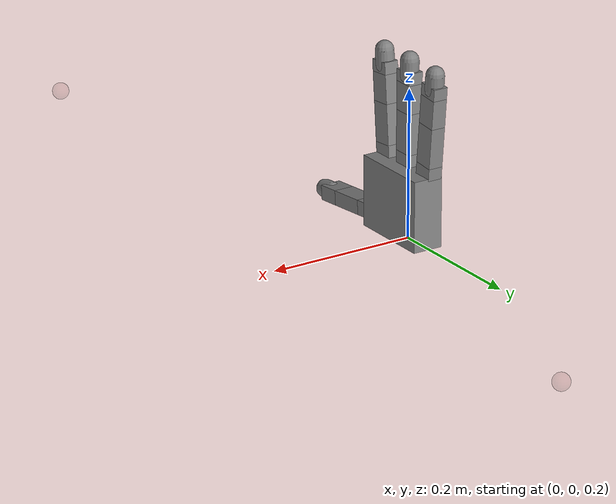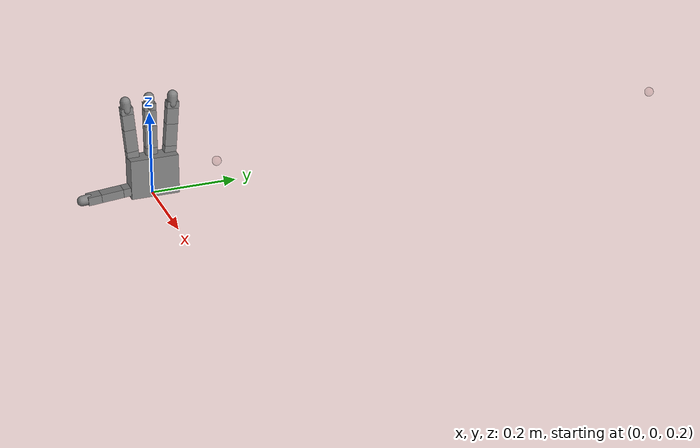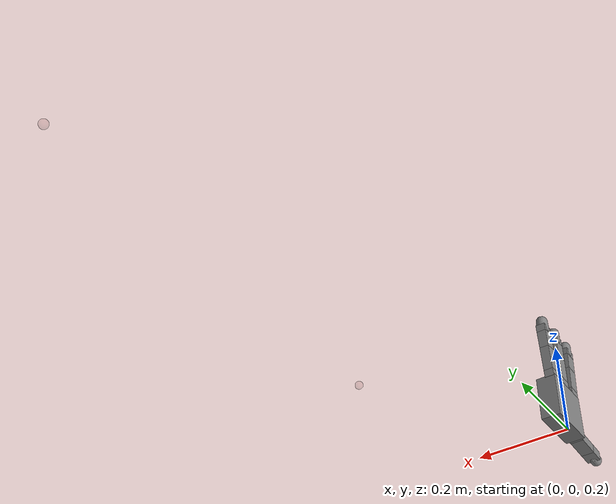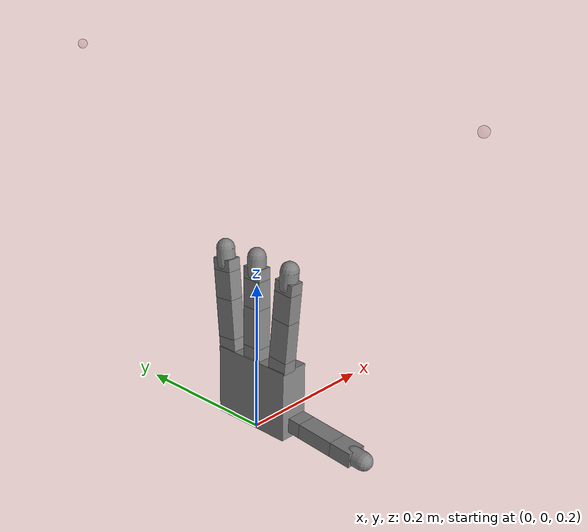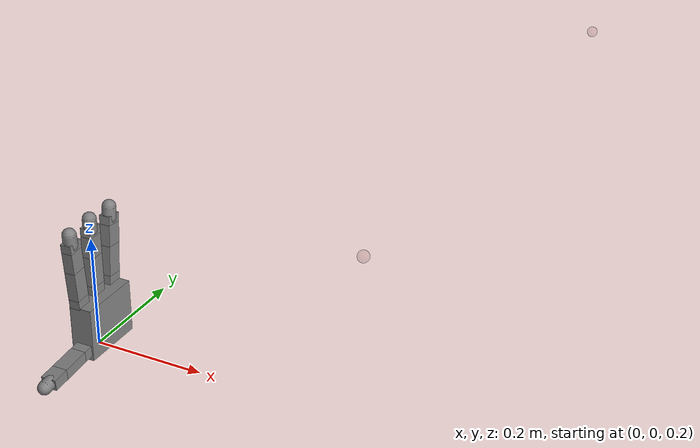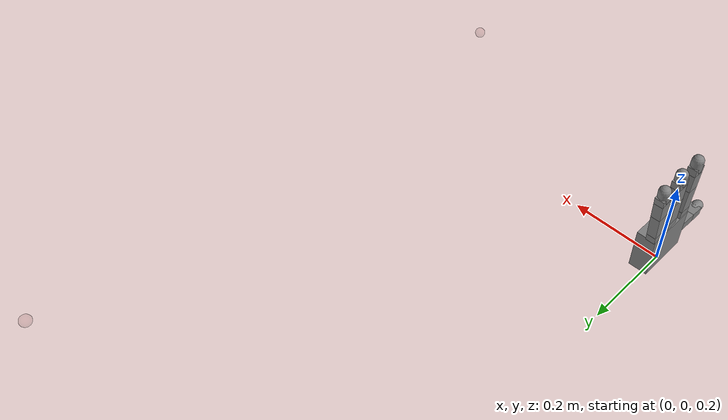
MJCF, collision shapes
<mujoco model="right_allegro_hand scene">
  <include file="right_hand.xml"/>

  <statistic center="0 0 0" extent="0.3"/>

  <visual>
    <headlight diffuse="0.6 0.6 0.6" ambient="0.3 0.3 0.3" specular="0 0 0"/>
    <rgba haze="0.15 0.25 0.35 1"/>
    <global azimuth="60" elevation="-40"/>
  </visual>

  <asset>
    <texture type="skybox" builtin="gradient" rgb1="1.0 1.0 1.0" rgb2="1.0 1.0 1.0" width="512" height="3072"/>
  </asset>

  <worldbody>
    <light pos="0 0 1"/>
    <light pos="0.3 0 1.5" dir="0 0 -1" directional="true"/>
    <body name="index_tip_target" pos="0.5 1 .5" quat="0 0 0 1" mocap="true">
      <geom type="sphere" size=".01" contype="0" conaffinity="0" rgba=".6 .3 .3 .2"/>
    </body>
    <body name="middle_tip_target" pos="0.5 0 .5" quat="0 0 0 1" mocap="true">
      <geom type="sphere" size=".01" contype="0" conaffinity="0" rgba=".6 .3 .3 .2"/>
    </body>
    <body name="ring_tip_target" pos="0.5 0 .5" quat="0 0 0 1" mocap="true">
      <geom type="sphere" size=".01" contype="0" conaffinity="0" rgba=".6 .3 .3 .2"/>
    </body>
    <body name="thumb_tip_target" pos="0.5 0 .5" quat="0 0 0 1" mocap="true">
      <geom type="sphere" size=".01" contype="0" conaffinity="0" rgba=".6 .3 .3 .2"/>
    </body>
  </worldbody>
</mujoco>

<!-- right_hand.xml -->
<mujoco model="allegro_right">
  <compiler angle="radian" meshdir="assets" autolimits="true"/>

  <option cone="elliptic" impratio="10"/>

  <default>
    <default class="allegro_right">
      <joint axis="0 1 0" damping=".1"/>
      <position kp="1"/>
      <geom density="800"/>

      <default class="visual">
        <geom type="mesh" contype="0" conaffinity="0" group="2" material="black"/>
        <default class="palm_visual">
          <geom mesh="base_link"/>
        </default>
        <default class="base_visual">
          <geom mesh="link_0.0"/>
        </default>
        <default class="proximal_visual">
          <geom mesh="link_1.0"/>
        </default>
        <default class="medial_visual">
          <geom mesh="link_2.0"/>
        </default>
        <default class="distal_visual">
          <geom mesh="link_3.0"/>
        </default>
        <default class="index_tip_visual">
          <geom pos="0 0 0.0267" material="white" mesh="link_3.0_tip"/>
        </default>
        <default class="thumbtip_visual">
          <geom pos="0 0 0.0423" material="white" mesh="link_15.0_tip"/>
        </default>
      </default>

      <default class="collision">
        <geom group="3" type="box" mass="0"/>
        <default class="palm_collision">
          <geom size="0.0204 0.0565 0.0475" pos="-0.0093 0 -0.0475"/>
        </default>
        <default class="base_collision">
          <geom size="0.0098 0.01375 0.0082" pos="0 0 0.0082"/>
          <default class="thumb_base_collision">
            <geom size="0.0179 0.017 0.02275" pos="-0.0179 0.009 0.0145"/>
          </default>
        </default>
        <default class="proximal_collision">
          <geom size="0.0098 0.01375 0.027" pos="0 0 0.027"/>
          <default class="thumb_proximal_collision">
            <geom size="0.0098 0.01375 0.00885" pos="0 0 0.00885"/>
          </default>
        </default>
        <default class="medial_collision">
          <geom size="0.0098 0.01375 0.0192" pos="0 0 0.0192"/>
          <default class="thumb_medial_collision">
            <geom size="0.0098 0.01375 0.0257" pos="0 0 0.0257"/>
          </default>
        </default>
        <default class="distal_collision">
          <geom size="0.0098 0.01375 0.008" pos="0 0 0.008"/>
          <default class="thumb_distal_collision">
            <geom size="0.0098 0.01375 0.0157" pos="0 0 0.0157"/>
          </default>
        </default>
        <default class="index_tip_collision">
          <geom type="capsule" size="0.012 0.01" pos="0 0 0.019"/>
          <default class="thumbtip_collision">
            <geom type="capsule" size="0.012 0.008" pos="0 0 0.035"/>
          </default>
        </default>
      </default>

      <default class="base">
        <joint axis="0 0 1" range="-0.47 0.47"/>
        <position ctrlrange="-0.47 0.47"/>
      </default>
      <default class="proximal">
        <joint range="-0.196 1.61"/>
        <position ctrlrange="-0.196 1.61"/>
      </default>
      <default class="medial">
        <joint range="-0.174 1.709"/>
        <position ctrlrange="-0.174 1.709"/>
      </default>
      <default class="distal">
        <joint range="-0.227 1.618"/>
        <position ctrlrange="-0.227 1.618"/>
      </default>
      <default class="thumb_base">
        <joint axis="-1 0 0" range="0.263 1.396"/>
        <position ctrlrange="0.263 1.396"/>
      </default>
      <default class="thumb_proximal">
        <joint axis="0 0 1" range="-0.105 1.163"/>
        <position ctrlrange="-0.105 1.163"/>
      </default>
      <default class="thumb_medial">
        <joint range="-0.189 1.644"/>
        <position ctrlrange="-0.189 1.644"/>
      </default>
      <default class="thumb_distal">
        <joint range="-0.162 1.719"/>
        <position ctrlrange="-0.162 1.719"/>
      </default>
    </default>
  </default>

  <asset>
    <material name="black" rgba="0.2 0.2 0.2 1"/>
    <material name="white" rgba="0.9 0.9 0.9 1"/>

    <mesh file="base_link.stl"/>
    <mesh file="link_0.0.stl"/>
    <mesh file="link_1.0.stl"/>
    <mesh file="link_2.0.stl"/>
    <mesh file="link_3.0.stl"/>
    <mesh file="link_3.0_tip.stl"/>
    <mesh file="link_12.0_right.stl"/>
    <mesh file="link_13.0.stl"/>
    <mesh file="link_14.0.stl"/>
    <mesh file="link_15.0.stl"/>
    <mesh file="link_15.0_tip.stl"/>
  </asset>

  <worldbody>
    <body name="palm" pos="0 0 0.3" euler="3.14 3.14 0" childclass="allegro_right">
      <geom class="palm_visual" mesh="base_link"/>
      <geom class="palm_collision"/>
      <!-- First finger -->
      <body name="ff_base" pos="0 0.0435 -0.001542" quat="0.999048 -0.0436194 0 0">
        <joint name="ffj0" class="base"/>
        <geom class="base_visual"/>
        <geom class="base_collision"/>
        <body name="ff_proximal" pos="0 0 0.0164">
          <joint name="ffj1" class="proximal"/>
          <geom class="proximal_visual"/>
          <geom class="proximal_collision"/>
          <body name="ff_medial" pos="0 0 0.054">
            <joint name="ffj2" class="medial"/>
            <geom class="medial_visual"/>
            <geom class="medial_collision"/>
            <body name="ff_distal" pos="0 0 0.0384">
              <joint name="ffj3" class="distal"/>
              <geom class="distal_visual"/>
              <geom class="distal_collision"/>
              <body name="ff_tip">
                <geom class="index_tip_visual"/>
                <geom class="index_tip_collision"/>
                <site name="index_tip" pos="-0.00 -0.0 0.0" size="0.005" rgba="0 1 0 1"/>
              </body>
            </body>
          </body>
        </body>
      </body>
      <!-- Middle finger -->
      <body name="mf_base" pos="0 0 0.0007">
        <joint name="mfj0" class="base"/>
        <geom class="base_visual"/>
        <geom class="base_collision"/>
        <body name="mf_proximal" pos="0 0 0.0164">
          <joint name="mfj1" class="proximal"/>
          <geom class="proximal_visual"/>
          <geom class="proximal_collision"/>
          <body name="mf_medial" pos="0 0 0.054">
            <joint name="mfj2" class="medial"/>
            <geom class="medial_visual"/>
            <geom class="medial_collision"/>
            <body name="mf_distal" pos="0 0 0.0384">
              <joint name="mfj3" class="distal"/>
              <geom class="distal_visual"/>
              <geom class="distal_collision"/>
              <body name="mf_tip">
                <geom class="index_tip_visual"/>
                <geom class="index_tip_collision"/>
                <site name="middle_tip" pos="-0.00 -0.0 0.0" size="0.005" rgba="0 1 0 1"/>
              </body>
            </body>
          </body>
        </body>
      </body>
      <!-- Ring finger -->
      <body name="rf_base" pos="0 -0.0435 -0.001542" quat="0.999048 0.0436194 0 0">
        <joint name="rfj0" class="base"/>
        <geom class="base_visual"/>
        <geom class="base_collision"/>
        <body name="rf_proximal" pos="0 0 0.0164">
          <joint name="rfj1" class="proximal"/>
          <geom class="proximal_visual"/>
          <geom class="proximal_collision"/>
          <body name="rf_medial" pos="0 0 0.054">
            <joint name="rfj2" class="medial"/>
            <geom class="medial_visual"/>
            <geom class="medial_collision"/>
            <body name="rf_distal" pos="0 0 0.0384">
              <joint name="rfj3" class="distal"/>
              <geom class="distal_visual"/>
              <geom class="distal_collision"/>
              <body name="rf_tip">
                <geom class="index_tip_visual"/>
                <geom class="index_tip_collision"/>
                <site name="ring_tip" pos="-0.00 -0.0 0.0" size="0.005" rgba="0 1 0 1"/>
              </body>
            </body>
          </body>
        </body>
      </body>
      <!-- Thumb -->
      <body name="th_base" pos="-0.0182 0.019333 -0.045987" quat="0.477714 -0.521334 -0.521334 -0.477714">
        <joint name="thj0" class="thumb_base"/>
        <geom class="visual" mesh="link_12.0_right"/>
        <geom class="thumb_base_collision"/>
        <body name="th_proximal" pos="-0.027 0.005 0.0399">
          <joint name="thj1" class="thumb_proximal"/>
          <geom class="visual" mesh="link_13.0"/>
          <geom class="thumb_proximal_collision"/>
          <body name="th_medial" pos="0 0 0.0177">
            <joint name="thj2" class="thumb_medial"/>
            <geom class="visual" mesh="link_14.0"/>
            <geom class="thumb_medial_collision"/>
            <body name="th_distal" pos="0 0 0.0514">
              <joint name="thj3" class="thumb_distal"/>
              <geom class="visual" mesh="link_15.0"/>
              <geom class="thumb_distal_collision"/>
              <body name="th_tip">
                <geom class="thumbtip_visual"/>
                <geom class="thumbtip_collision"/>
                <site name="thumb_tip" pos="-0.00 -0. -0.0" size="0.005" rgba="0 1 0 1"/>
              </body>
            </body>
          </body>
        </body>
      </body>
    </body>
  </worldbody>

  <contact>
    <exclude body1="palm" body2="ff_base"/>
    <exclude body1="palm" body2="mf_base"/>
    <exclude body1="palm" body2="rf_base"/>
    <exclude body1="palm" body2="th_base"/>
    <exclude body1="palm" body2="th_proximal"/>
  </contact>

  <actuator>
    <position name="ffa0" joint="ffj0" class="base"/>
    <position name="ffa1" joint="ffj1" class="proximal"/>
    <position name="ffa2" joint="ffj2" class="medial"/>
    <position name="ffa3" joint="ffj3" class="distal"/>
    <position name="mfa0" joint="mfj0" class="base"/>
    <position name="mfa1" joint="mfj1" class="proximal"/>
    <position name="mfa2" joint="mfj2" class="medial"/>
    <position name="mfa3" joint="mfj3" class="distal"/>
    <position name="rfa0" joint="rfj0" class="base"/>
    <position name="rfa1" joint="rfj1" class="proximal"/>
    <position name="rfa2" joint="rfj2" class="medial"/>
    <position name="rfa3" joint="rfj3" class="distal"/>
    <position name="tha0" joint="thj0" class="thumb_base"/>
    <position name="tha1" joint="thj1" class="thumb_proximal"/>
    <position name="tha2" joint="thj2" class="thumb_medial"/>
    <position name="tha3" joint="thj3" class="thumb_distal"/>
  </actuator>
</mujoco>
